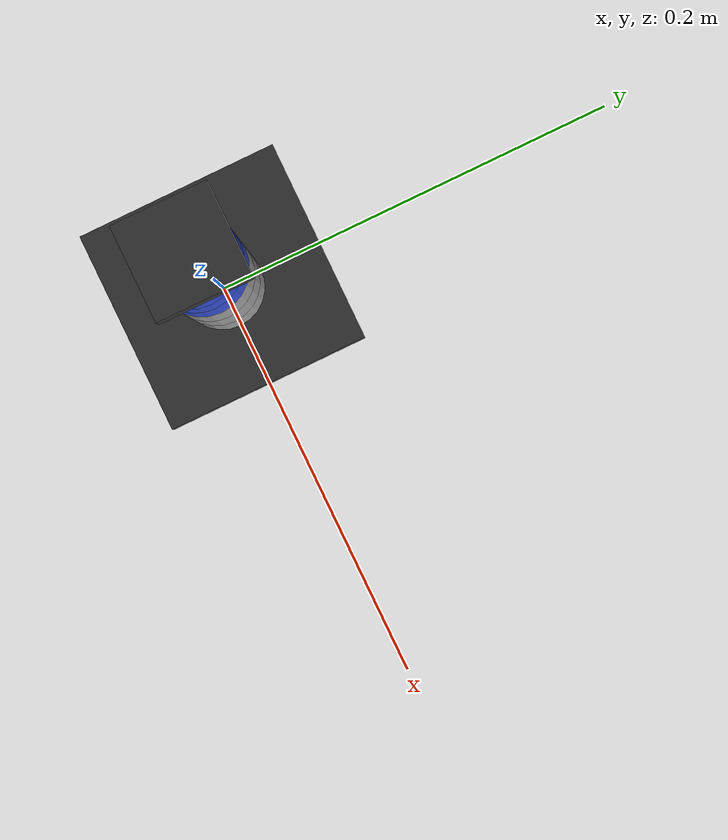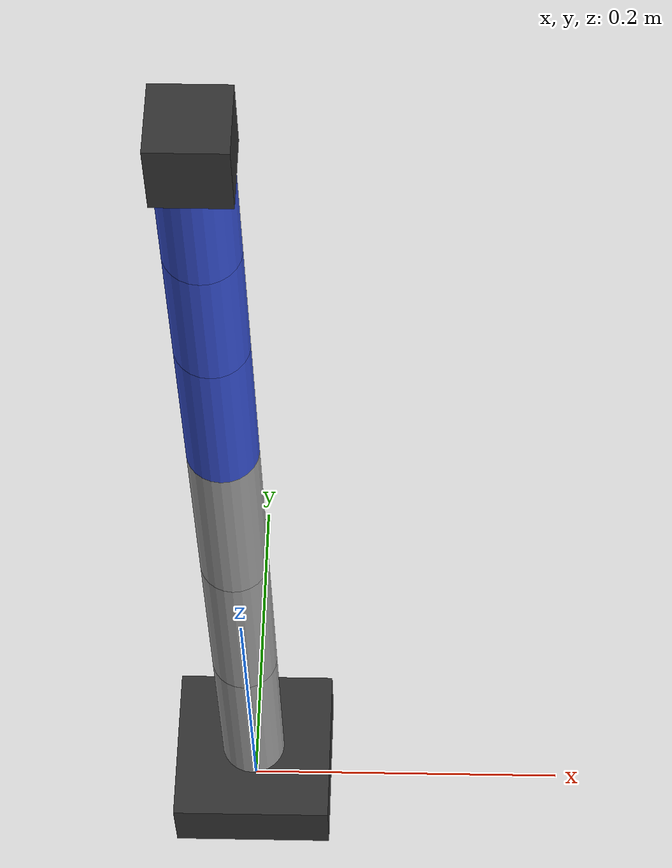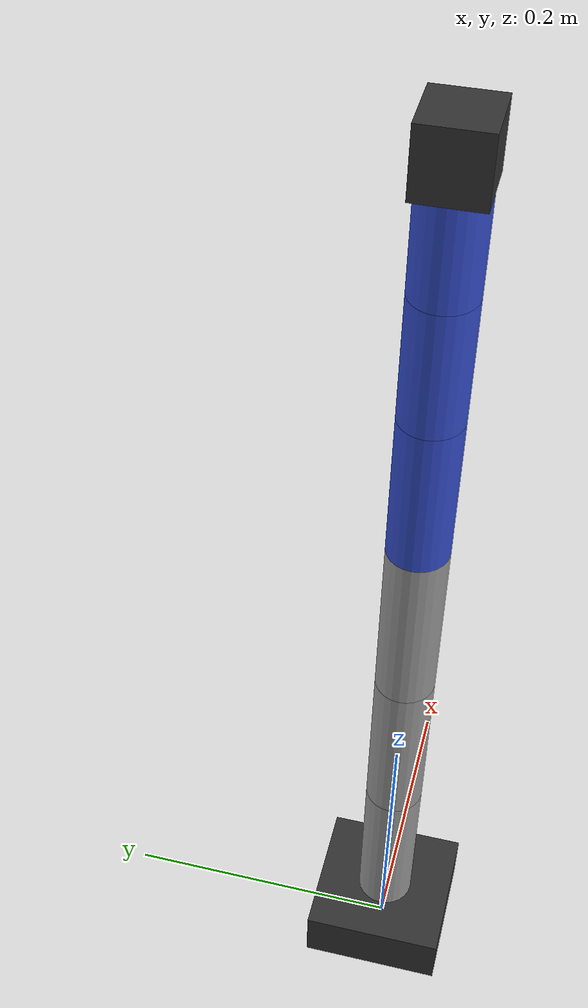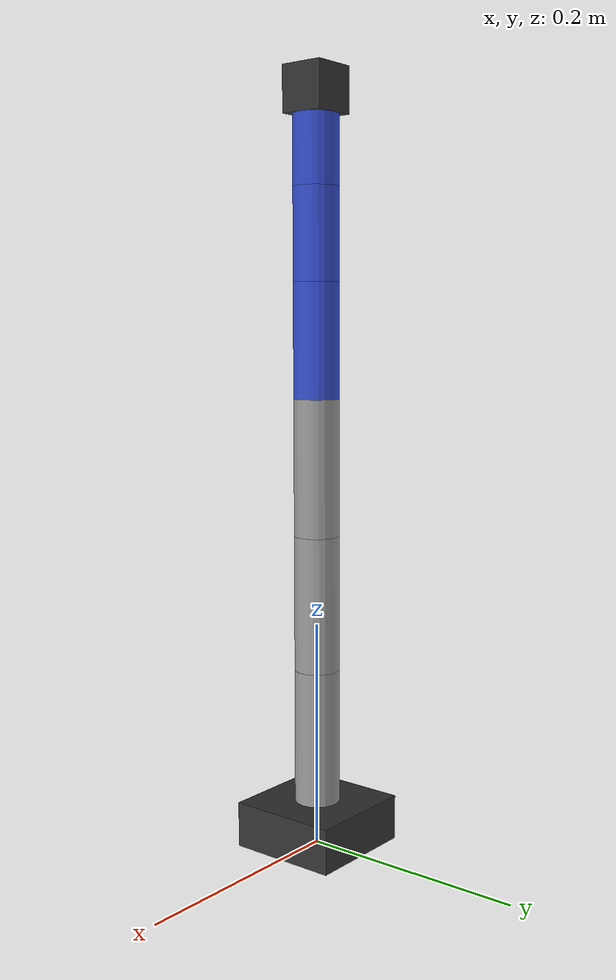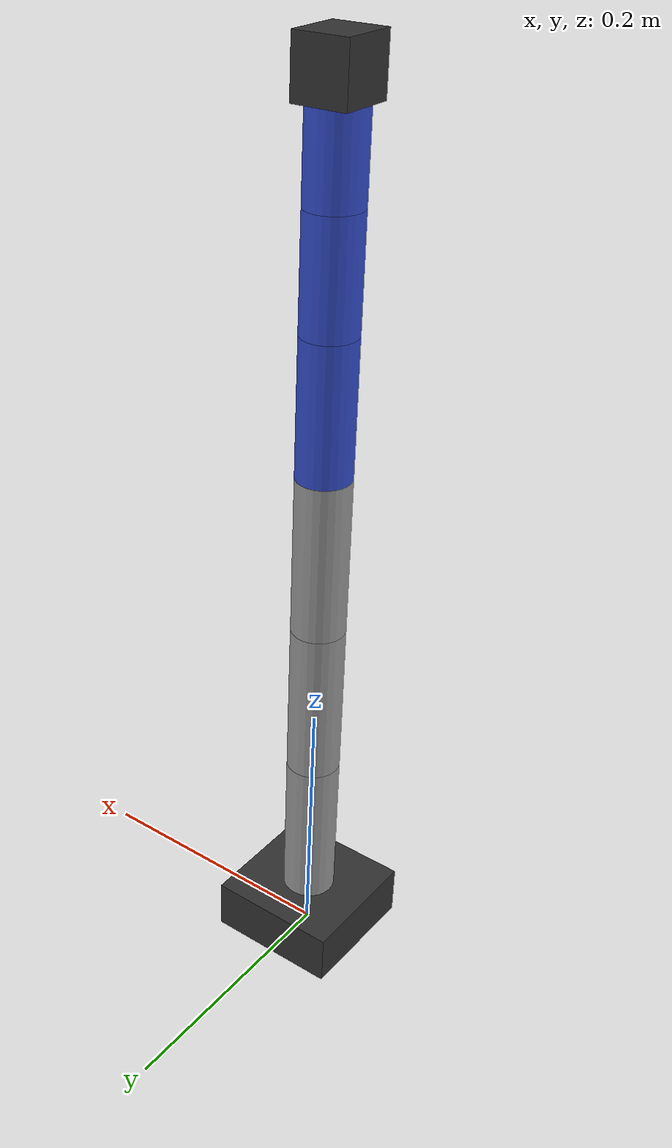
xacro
<?xml version="1.0"?>
<robot xmlns:xacro="http://ros.org/wiki/xacro" name="my_arm">

<xacro:arg name="ros2_control_params" default=""/>

  <!-- =========================
       Parameters (edit here)
       ========================= -->
  <!-- Link lengths (meters) -->
  <xacro:arg name="L1" default="0.12"/>
  <xacro:arg name="L2" default="0.12"/>
  <xacro:arg name="L3" default="0.12"/>
  <xacro:arg name="L4" default="0.10"/>
  <xacro:arg name="L5" default="0.08"/>
  <xacro:arg name="L6" default="0.06"/>

  <!-- Link radii / thickness (meters) -->
  <xacro:arg name="r_link" default="0.02"/>
  <xacro:arg name="base_x" default="0.10"/>
  <xacro:arg name="base_y" default="0.10"/>
  <xacro:arg name="base_z" default="0.04"/>

  <!-- Masses (kg) - keep non-zero -->
  <xacro:arg name="m_base" default="1.0"/>
  <xacro:arg name="m_link" default="0.3"/>
  <xacro:arg name="m_tool" default="0.05"/>

  <!-- Joint limits -->
  <xacro:arg name="joint_vel" default="2.0"/>
  <xacro:arg name="joint_effort" default="5.0"/>

  <!-- Convenience properties -->
  <xacro:property name="L1" value="$(arg L1)"/>
  <xacro:property name="L2" value="$(arg L2)"/>
  <xacro:property name="L3" value="$(arg L3)"/>
  <xacro:property name="L4" value="$(arg L4)"/>
  <xacro:property name="L5" value="$(arg L5)"/>
  <xacro:property name="L6" value="$(arg L6)"/>
  <xacro:property name="r"  value="$(arg r_link)"/>

  <!-- =========================
       Inertial macros (Gazebo-safe)
       ========================= -->
  <xacro:macro name="inertial_box" params="mass x y z">
    <inertial>
      <mass value="${mass}"/>
      <inertia ixx="${mass*(y*y + z*z)/12.0}" ixy="0.0" ixz="0.0"
               iyy="${mass*(x*x + z*z)/12.0}" iyz="0.0"
               izz="${mass*(x*x + y*y)/12.0}"/>
    </inertial>
  </xacro:macro>

  <xacro:macro name="inertial_cylinder_z" params="mass radius length">
    <!-- Cylinder aligned with Z axis -->
    <inertial>
      <mass value="${mass}"/>
      <inertia ixx="${mass*(3*radius*radius + length*length)/12.0}" ixy="0.0" ixz="0.0"
               iyy="${mass*(3*radius*radius + length*length)/12.0}" iyz="0.0"
               izz="${mass*(radius*radius)/2.0}"/>
    </inertial>
  </xacro:macro>

  <!-- =========================
       Simple materials
       ========================= -->
  <material name="grey"><color rgba="0.6 0.6 0.6 1.0"/></material>
  <material name="dark"><color rgba="0.2 0.2 0.2 1.0"/></material>
  <material name="blue"><color rgba="0.2 0.3 0.8 1.0"/></material>

  <!-- =========================
       Links
       ========================= -->
  <!-- Dummy root link (no inertia) to keep KDL happy -->
  <link name="world"/>

  <joint name="world_to_base" type="fixed">
    <parent link="world"/>
    <child link="base_link"/>
    <origin xyz="0 0 0" rpy="0 0 0"/>
  </joint>

  <link name="base_link">
    <visual>
      <origin xyz="0 0 ${$(arg base_z)/2.0}" rpy="0 0 0"/>
      <geometry>
        <box size="$(arg base_x) $(arg base_y) $(arg base_z)"/>
      </geometry>
      <material name="dark"/>
    </visual>
    <collision>
      <origin xyz="0 0 ${$(arg base_z)/2.0}" rpy="0 0 0"/>
      <geometry>
        <box size="$(arg base_x) $(arg base_y) $(arg base_z)"/>
      </geometry>
    </collision>
    <xacro:inertial_box mass="$(arg m_base)" x="$(arg base_x)" y="$(arg base_y)" z="$(arg base_z)"/>
  </link>

  <!-- Link bodies: cylinders aligned along +Z for simplicity -->
  <xacro:macro name="arm_link" params="name length mass mat">
    <link name="${name}">
      <visual>
        <origin xyz="0 0 ${length/2.0}" rpy="0 0 0"/>
        <geometry>
          <cylinder radius="${r}" length="${length}"/>
        </geometry>
        <material name="${mat}"/>
      </visual>
      <collision>
        <origin xyz="0 0 ${length/2.0}" rpy="0 0 0"/>
        <geometry>
          <cylinder radius="${r}" length="${length}"/>
        </geometry>
      </collision>
      <xacro:inertial_cylinder_z mass="${mass}" radius="${r}" length="${length}"/>
    </link>
  </xacro:macro>

  <xacro:arm_link name="link1" length="${L1}" mass="$(arg m_link)" mat="grey"/>
  <xacro:arm_link name="link2" length="${L2}" mass="$(arg m_link)" mat="grey"/>
  <xacro:arm_link name="link3" length="${L3}" mass="$(arg m_link)" mat="grey"/>
  <xacro:arm_link name="link4" length="${L4}" mass="$(arg m_link)" mat="blue"/>
  <xacro:arm_link name="link5" length="${L5}" mass="$(arg m_link)" mat="blue"/>
  <xacro:arm_link name="link6" length="${L6}" mass="$(arg m_link)" mat="blue"/>

  <!-- Tool link (tiny box) -->
  <link name="tool0">
    <visual>
      <origin xyz="0 0 0.02" rpy="0 0 0"/>
      <geometry>
        <box size="0.04 0.04 0.04"/>
      </geometry>
      <material name="dark"/>
    </visual>
    <collision>
      <origin xyz="0 0 0.02" rpy="0 0 0"/>
      <geometry>
        <box size="0.04 0.04 0.04"/>
      </geometry>
    </collision>
    <xacro:inertial_box mass="$(arg m_tool)" x="0.04" y="0.04" z="0.04"/>
  </link>

  <!-- =========================
       Joints (6-DOF)
       ========================= -->
  <!-- Convention: each joint rotates about Z for maximum simplicity.
       You can change axes later (e.g., alternating Z/Y) once simulation works. -->
  <joint name="joint1" type="revolute">
    <parent link="base_link"/>
    <child link="link1"/>
    <origin xyz="0 0 $(arg base_z)" rpy="0 0 0"/>
    <axis xyz="0 0 1"/>
    <limit lower="-3.14159" upper="3.14159" effort="$(arg joint_effort)" velocity="$(arg joint_vel)"/>
    <dynamics damping="0.2" friction="0.0"/>
  </joint>

  <joint name="joint2" type="revolute">
    <parent link="link1"/>
    <child link="link2"/>
    <origin xyz="0 0 ${L1}" rpy="0 0 0"/>
    <axis xyz="0 1 0"/>
    <limit lower="-3.14159" upper="3.14159" effort="$(arg joint_effort)" velocity="$(arg joint_vel)"/>
    <dynamics damping="0.2" friction="0.0"/>
  </joint>

  <joint name="joint3" type="revolute">
    <parent link="link2"/>
    <child link="link3"/>
    <origin xyz="0 0 ${L2}" rpy="0 0 0"/>
    <axis xyz="0 1 0"/>
    <limit lower="-3.14159" upper="3.14159" effort="$(arg joint_effort)" velocity="$(arg joint_vel)"/>
    <dynamics damping="0.2" friction="0.0"/>
  </joint>

  <joint name="joint4" type="revolute">
    <parent link="link3"/>
    <child link="link4"/>
    <origin xyz="0 0 ${L3}" rpy="0 0 0"/>
    <axis xyz="0 0 1"/>
    <limit lower="-3.14159" upper="3.14159" effort="$(arg joint_effort)" velocity="$(arg joint_vel)"/>
    <dynamics damping="0.2" friction="0.0"/>
  </joint>

  <joint name="joint5" type="revolute">
    <parent link="link4"/>
    <child link="link5"/>
    <origin xyz="0 0 ${L4}" rpy="0 0 0"/>
    <axis xyz="0 1 0"/>
    <limit lower="-3.14159" upper="3.14159" effort="$(arg joint_effort)" velocity="$(arg joint_vel)"/>
    <dynamics damping="0.2" friction="0.0"/>
  </joint>

  <joint name="joint6" type="revolute">
    <parent link="link5"/>
    <child link="link6"/>
    <origin xyz="0 0 ${L5}" rpy="0 0 0"/>
    <axis xyz="0 0 1"/>
    <limit lower="-3.14159" upper="3.14159" effort="$(arg joint_effort)" velocity="$(arg joint_vel)"/>
    <dynamics damping="0.2" friction="0.0"/>
  </joint>

  <joint name="tool0_fixed" type="fixed">
    <parent link="link6"/>
    <child link="tool0"/>
    <origin xyz="0 0 ${L6}" rpy="0 0 0"/>
  </joint>

  <!-- =========================
       ros2_control for Gazebo Sim (gz_ros2_control)
       ========================= -->
  <ros2_control name="MyArmSystem" type="system">
    <hardware>
      <plugin>gz_ros2_control/GazeboSimSystem</plugin>
    </hardware>

    <joint name="joint1">
      <command_interface name="position"/>
      <state_interface name="position"/>
      <state_interface name="velocity"/>
    </joint>
    <joint name="joint2">
      <command_interface name="position"/>
      <state_interface name="position"/>
      <state_interface name="velocity"/>
    </joint>
    <joint name="joint3">
      <command_interface name="position"/>
      <state_interface name="position"/>
      <state_interface name="velocity"/>
    </joint>
    <joint name="joint4">
      <command_interface name="position"/>
      <state_interface name="position"/>
      <state_interface name="velocity"/>
    </joint>
    <joint name="joint5">
      <command_interface name="position"/>
      <state_interface name="position"/>
      <state_interface name="velocity"/>
    </joint>
    <joint name="joint6">
      <command_interface name="position"/>
      <state_interface name="position"/>
      <state_interface name="velocity"/>
    </joint>
  </ros2_control>

  <!-- For Ignition Gazebo (ROS 2 Humble) -->
  <gazebo>
    <plugin name="ign_ros2_control::IgnitionROS2ControlPlugin"
            filename="libign_ros2_control-system.so">
      <parameters>$(arg ros2_control_params)</parameters>
    </plugin>
  </gazebo>

</robot>
